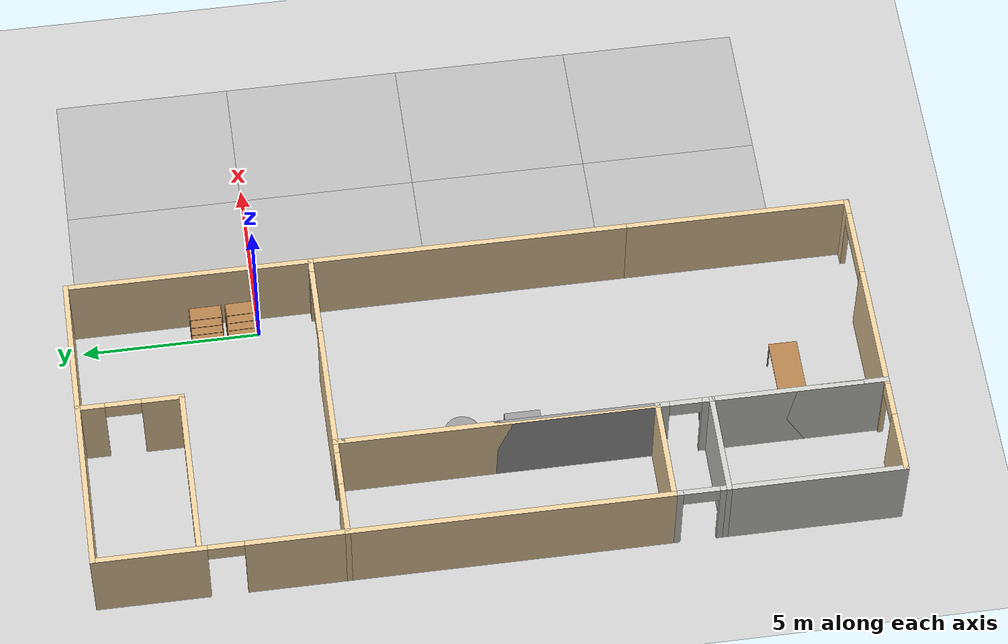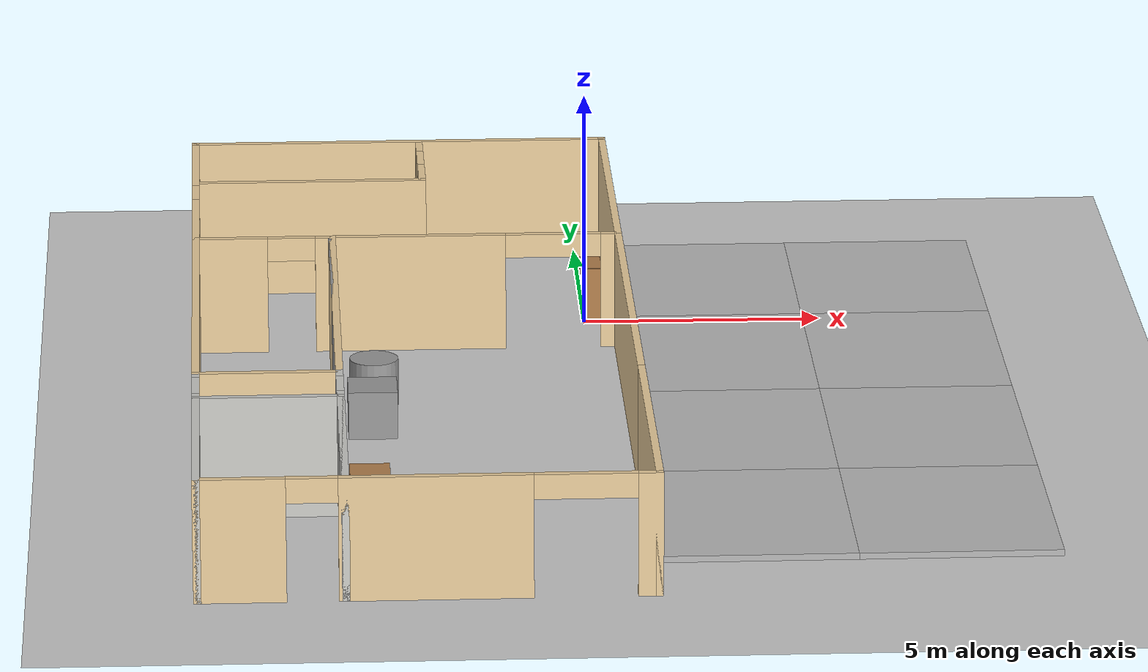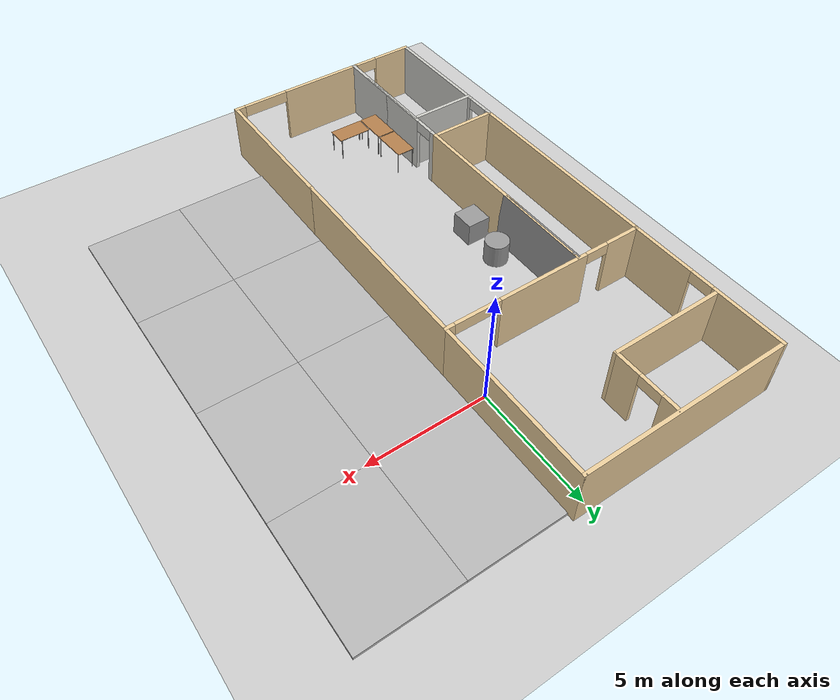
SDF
<sdf version="1.6">
 <world name="default">
  <model name="ground_plane">
   <static>1</static>
   <link name="link">
    <collision name="collision">
     <geometry><plane><normal>0 0 1</normal><size>100 100</size></plane></geometry>
     <surface>
      <contact><collide_bitmask>65535</collide_bitmask></contact>
      <friction><ode><mu>100</mu><mu2>50</mu2></ode></friction>
     </surface>
    </collision>
    <visual name="visual">
     <cast_shadows>0</cast_shadows>
     <geometry><plane><normal>0 0 1</normal><size>100 100</size></plane></geometry>
     <material>
      <script><uri>file://media/materials/scripts/gazebo.material</uri><name>Gazebo/Grey</name></script>
     </material>
    </visual>
   </link>
  </model>
  <model name="Building">
   <pose>-3.79491 -5.77885 0 0 -0 0</pose>
   <link name="Wall_50">
    <collision name="Wall_50_Collision">
     <geometry><box><size>9 0.15 2.5</size></box></geometry>
     <pose>0 0 1.25 0 -0 0</pose>
    </collision>
    <visual name="Wall_50_Visual">
     <pose>0 0 1.25 0 -0 0</pose>
     <geometry><box><size>9 0.15 2.5</size></box></geometry>
     <material>
      <script><uri>file://media/materials/scripts/gazebo.material</uri><name>Gazebo/Grey</name></script>
      <ambient>0.921569 0.807843 0.615686 1</ambient>
     </material>
     <meta><layer>0</layer></meta>
    </visual>
    <pose>0 11.025 0 0 -0 0</pose>
   </link>
   <link name="Wall_51">
    <collision name="Wall_51_Collision">
     <geometry><box><size>7 0.15 2.5</size></box></geometry>
     <pose>0 0 1.25 0 -0 0</pose>
    </collision>
    <visual name="Wall_51_Visual">
     <pose>0 0 1.25 0 -0 0</pose>
     <geometry><box><size>7 0.15 2.5</size></box></geometry>
     <material>
      <script><uri>file://media/materials/scripts/gazebo.material</uri><name>Gazebo/Grey</name></script>
      <ambient>0.921569 0.807843 0.615686 1</ambient>
     </material>
     <meta><layer>0</layer></meta>
    </visual>
    <pose>4.425 7.6 0 0 0 -1.5708</pose>
   </link>
   <link name="Wall_52">
    <pose>0 4.175 0 0 -0 3.14159</pose>
    <visual name="Wall_52_Visual_0">
     <pose>-4.28104 0 1.25 0 -0 0</pose>
     <geometry><box><size>0.437917 0.15 2.5</size></box></geometry>
     <material>
      <script><uri>file://media/materials/scripts/gazebo.material</uri><name>Gazebo/Grey</name></script>
      <ambient>0.921569 0.807843 0.615686 1</ambient>
     </material>
     <meta><layer>0</layer></meta>
    </visual>
    <collision name="Wall_52_Collision_0">
     <geometry><box><size>0.437917 0.15 2.5</size></box></geometry>
     <pose>-4.28104 0 1.25 0 -0 0</pose>
    </collision>
    <visual name="Wall_52_Visual_1">
     <pose>-0.067944 0 1.25 0 -0 0</pose>
     <geometry><box><size>3.98828 0.15 2.5</size></box></geometry>
     <material>
      <script><uri>file://media/materials/scripts/gazebo.material</uri><name>Gazebo/Grey</name></script>
      <ambient>0.921569 0.807843 0.615686 1</ambient>
     </material>
     <meta><layer>0</layer></meta>
    </visual>
    <collision name="Wall_52_Collision_1">
     <geometry><box><size>3.98828 0.15 2.5</size></box></geometry>
     <pose>-0.067944 0 1.25 0 -0 0</pose>
    </collision>
    <visual name="Wall_52_Visual_2">
     <pose>3.7131 0 1.25 0 -0 0</pose>
     <geometry><box><size>1.5738 0.15 2.5</size></box></geometry>
     <material>
      <script><uri>file://media/materials/scripts/gazebo.material</uri><name>Gazebo/Grey</name></script>
      <ambient>0.921569 0.807843 0.615686 1</ambient>
     </material>
     <meta><layer>0</layer></meta>
    </visual>
    <collision name="Wall_52_Collision_2">
     <geometry><box><size>1.5738 0.15 2.5</size></box></geometry>
     <pose>3.7131 0 1.25 0 -0 0</pose>
    </collision>
    <visual name="Wall_52_Visual_3">
     <pose>-3.06208 0 2.25 0 -0 0</pose>
     <geometry><box><size>2 0.15 0.5</size></box></geometry>
     <material>
      <script><uri>file://media/materials/scripts/gazebo.material</uri><name>Gazebo/Grey</name></script>
      <ambient>0.921569 0.807843 0.615686 1</ambient>
     </material>
     <meta><layer>0</layer></meta>
    </visual>
    <collision name="Wall_52_Collision_3">
     <geometry><box><size>2 0.15 0.5</size></box></geometry>
     <pose>-3.06208 0 2.25 0 -0 0</pose>
    </collision>
    <visual name="Wall_52_Visual_4">
     <pose>2.4262 0 2.25 0 -0 0</pose>
     <geometry><box><size>1 0.15 0.5</size></box></geometry>
     <material>
      <script><uri>file://media/materials/scripts/gazebo.material</uri><name>Gazebo/Grey</name></script>
      <ambient>0.921569 0.807843 0.615686 1</ambient>
     </material>
     <meta><layer>0</layer></meta>
    </visual>
    <collision name="Wall_52_Collision_4">
     <geometry><box><size>1 0.15 0.5</size></box></geometry>
     <pose>2.4262 0 2.25 0 -0 0</pose>
    </collision>
   </link>
   <link name="Wall_53">
    <pose>-4.425 7.6 0 0 -0 1.5708</pose>
    <visual name="Wall_53_Visual_0">
     <pose>-2.07395 0 1.25 0 -0 0</pose>
     <geometry><box><size>2.8521 0.15 2.5</size></box></geometry>
     <material>
      <script><uri>file://media/materials/scripts/gazebo.material</uri><name>Gazebo/Grey</name></script>
      <ambient>0.921569 0.807843 0.615686 1</ambient>
     </material>
     <meta><layer>0</layer></meta>
    </visual>
    <collision name="Wall_53_Collision_0">
     <geometry><box><size>2.8521 0.15 2.5</size></box></geometry>
     <pose>-2.07395 0 1.25 0 -0 0</pose>
    </collision>
    <visual name="Wall_53_Visual_1">
     <pose>1.92605 0 1.25 0 -0 0</pose>
     <geometry><box><size>3.1479 0.15 2.5</size></box></geometry>
     <material>
      <script><uri>file://media/materials/scripts/gazebo.material</uri><name>Gazebo/Grey</name></script>
      <ambient>0.921569 0.807843 0.615686 1</ambient>
     </material>
     <meta><layer>0</layer></meta>
    </visual>
    <collision name="Wall_53_Collision_1">
     <geometry><box><size>3.1479 0.15 2.5</size></box></geometry>
     <pose>1.92605 0 1.25 0 -0 0</pose>
    </collision>
    <visual name="Wall_53_Visual_2">
     <pose>-0.1479 0 2.25 0 -0 0</pose>
     <geometry><box><size>1 0.15 0.5</size></box></geometry>
     <material>
      <script><uri>file://media/materials/scripts/gazebo.material</uri><name>Gazebo/Grey</name></script>
      <ambient>0.921569 0.807843 0.615686 1</ambient>
     </material>
     <meta><layer>0</layer></meta>
    </visual>
    <collision name="Wall_53_Collision_2">
     <geometry><box><size>1 0.15 0.5</size></box></geometry>
     <pose>-0.1479 0 2.25 0 -0 0</pose>
    </collision>
   </link>
   <link name="Wall_55">
    <collision name="Wall_55_Collision">
     <geometry><box><size>9 0.15 2.5</size></box></geometry>
     <pose>0 0 1.25 0 -0 0</pose>
    </collision>
    <visual name="Wall_55_Visual">
     <pose>0 0 1.25 0 -0 0</pose>
     <geometry><box><size>9 0.15 2.5</size></box></geometry>
     <material>
      <script><uri>file://media/materials/scripts/gazebo.material</uri><name>Gazebo/Grey</name></script>
      <ambient>0.921569 0.807843 0.615686 1</ambient>
     </material>
     <meta><layer>0</layer></meta>
    </visual>
    <pose>-4.425 -0.25 0 0 0 -1.5708</pose>
   </link>
   <link name="Wall_56">
    <collision name="Wall_56_Collision">
     <geometry><box><size>3 0.15 2.5</size></box></geometry>
     <pose>0 0 1.25 0 -0 0</pose>
    </collision>
    <visual name="Wall_56_Visual">
     <pose>0 0 1.25 0 -0 0</pose>
     <geometry><box><size>3 0.15 2.5</size></box></geometry>
     <material>
      <script><uri>file://media/materials/scripts/gazebo.material</uri><name>Gazebo/Grey</name></script>
      <ambient>0.921569 0.807843 0.615686 1</ambient>
     </material>
     <meta><layer>0</layer></meta>
    </visual>
    <pose>-3 -4.675 0 0 -0 0</pose>
   </link>
   <link name="Wall_58">
    <collision name="Wall_58_Collision">
     <geometry><box><size>0.15 0.15 2.5</size></box></geometry>
     <pose>0 0 1.25 0 -0 0</pose>
    </collision>
    <visual name="Wall_58_Visual">
     <pose>0 0 1.25 0 -0 0</pose>
     <geometry><box><size>0.15 0.15 2.5</size></box></geometry>
     <material>
      <script><uri>file://media/materials/scripts/gazebo.material</uri><name>Gazebo/Grey</name></script>
      <ambient>1 1 1 1</ambient>
     </material>
     <meta><layer>0</layer></meta>
    </visual>
    <pose>-1.575 3.925 0 0 -0 0</pose>
   </link>
   <link name="Wall_66">
    <collision name="Wall_66_Collision">
     <geometry><box><size>9 0.15 2.5</size></box></geometry>
     <pose>0 0 1.25 0 -0 0</pose>
    </collision>
    <visual name="Wall_66_Visual">
     <pose>0 0 1.25 0 -0 0</pose>
     <geometry><box><size>9 0.15 2.5</size></box></geometry>
     <material>
      <script><uri>file://media/materials/scripts/gazebo.material</uri><name>Gazebo/Grey</name></script>
      <ambient>0.921569 0.807843 0.615686 1</ambient>
     </material>
     <meta><layer>0</layer></meta>
    </visual>
    <pose>-1.575 -0.25 0 0 -0 1.5708</pose>
   </link>
   <link name="Wall_68">
    <collision name="Wall_68_Collision">
     <geometry><box><size>9 0.15 2.5</size></box></geometry>
     <pose>0 0 1.25 0 -0 0</pose>
    </collision>
    <visual name="Wall_68_Visual">
     <pose>0 0 1.25 0 -0 0</pose>
     <geometry><box><size>9 0.15 2.5</size></box></geometry>
     <material>
      <script><uri>file://media/materials/scripts/gazebo.material</uri><name>Gazebo/Grey</name></script>
      <ambient>0.921569 0.807843 0.615686 1</ambient>
     </material>
     <meta><layer>0</layer></meta>
    </visual>
    <pose>4.425 -0.25 0 0 0 -1.5708</pose>
   </link>
   <link name="Wall_75">
    <collision name="Wall_75_Collision">
     <geometry><box><size>9 0.15 2.5</size></box></geometry>
     <pose>0 0 1.25 0 -0 0</pose>
    </collision>
    <visual name="Wall_75_Visual">
     <pose>0 0 1.25 0 -0 0</pose>
     <geometry><box><size>9 0.15 2.5</size></box></geometry>
     <material>
      <script><uri>file://media/materials/scripts/gazebo.material</uri><name>Gazebo/Grey</name></script>
      <ambient>1 1 1 1</ambient>
     </material>
     <meta><layer>0</layer></meta>
    </visual>
    <pose>-1.575 -0.25 0 0 0 -1.5708</pose>
   </link>
   <link name="Wall_78">
    <pose>-4.425 -7.85 0 0 0 -1.5708</pose>
    <visual name="Wall_78_Visual_0">
     <pose>-3.0867 0 1.25 0 -0 0</pose>
     <geometry><box><size>0.326599 0.15 2.5</size></box></geometry>
     <material>
      <script><uri>file://media/materials/scripts/gazebo.material</uri><name>Gazebo/CeilingTiled</name></script>
      <ambient>0.921569 0.807843 0.615686 1</ambient>
     </material>
     <meta><layer>0</layer></meta>
    </visual>
    <collision name="Wall_78_Collision_0">
     <geometry><box><size>0.326599 0.15 2.5</size></box></geometry>
     <pose>-3.0867 0 1.25 0 -0 0</pose>
    </collision>
    <visual name="Wall_78_Visual_1">
     <pose>0.6633 0 1.25 0 -0 0</pose>
     <geometry><box><size>5.1734 0.15 2.5</size></box></geometry>
     <material>
      <script><uri>file://media/materials/scripts/gazebo.material</uri><name>Gazebo/CeilingTiled</name></script>
      <ambient>0.921569 0.807843 0.615686 1</ambient>
     </material>
     <meta><layer>0</layer></meta>
    </visual>
    <collision name="Wall_78_Collision_1">
     <geometry><box><size>5.1734 0.15 2.5</size></box></geometry>
     <pose>0.6633 0 1.25 0 -0 0</pose>
    </collision>
    <visual name="Wall_78_Visual_2">
     <pose>-2.4234 0 2.25 0 -0 0</pose>
     <geometry><box><size>1 0.15 0.5</size></box></geometry>
     <material>
      <script><uri>file://media/materials/scripts/gazebo.material</uri><name>Gazebo/CeilingTiled</name></script>
      <ambient>0.921569 0.807843 0.615686 1</ambient>
     </material>
     <meta><layer>0</layer></meta>
    </visual>
    <collision name="Wall_78_Collision_2">
     <geometry><box><size>1 0.15 0.5</size></box></geometry>
     <pose>-2.4234 0 2.25 0 -0 0</pose>
    </collision>
   </link>
   <link name="Wall_80">
    <pose>0 -11.025 0 0 -0 0</pose>
    <visual name="Wall_80_Visual_0">
     <pose>-3.60666 0 1.25 0 -0 0</pose>
     <geometry><box><size>1.78667 0.15 2.5</size></box></geometry>
     <material>
      <script><uri>file://media/materials/scripts/gazebo.material</uri><name>Gazebo/Grey</name></script>
      <ambient>0.921569 0.807843 0.615686 1</ambient>
     </material>
     <meta><layer>0</layer></meta>
    </visual>
    <collision name="Wall_80_Collision_0">
     <geometry><box><size>1.78667 0.15 2.5</size></box></geometry>
     <pose>-3.60666 0 1.25 0 -0 0</pose>
    </collision>
    <visual name="Wall_80_Visual_1">
     <pose>0.15254 0 1.25 0 -0 0</pose>
     <geometry><box><size>3.73174 0.15 2.5</size></box></geometry>
     <material>
      <script><uri>file://media/materials/scripts/gazebo.material</uri><name>Gazebo/Grey</name></script>
      <ambient>0.921569 0.807843 0.615686 1</ambient>
     </material>
     <meta><layer>0</layer></meta>
    </visual>
    <collision name="Wall_80_Collision_1">
     <geometry><box><size>3.73174 0.15 2.5</size></box></geometry>
     <pose>0.15254 0 1.25 0 -0 0</pose>
    </collision>
    <visual name="Wall_80_Visual_2">
     <pose>4.2592 0 1.25 0 -0 0</pose>
     <geometry><box><size>0.481591 0.15 2.5</size></box></geometry>
     <material>
      <script><uri>file://media/materials/scripts/gazebo.material</uri><name>Gazebo/Grey</name></script>
      <ambient>0.921569 0.807843 0.615686 1</ambient>
     </material>
     <meta><layer>0</layer></meta>
    </visual>
    <collision name="Wall_80_Collision_2">
     <geometry><box><size>0.481591 0.15 2.5</size></box></geometry>
     <pose>4.2592 0 1.25 0 -0 0</pose>
    </collision>
    <visual name="Wall_80_Visual_3">
     <pose>-2.21333 0 2.25 0 -0 0</pose>
     <geometry><box><size>1 0.15 0.5</size></box></geometry>
     <material>
      <script><uri>file://media/materials/scripts/gazebo.material</uri><name>Gazebo/Grey</name></script>
      <ambient>0.921569 0.807843 0.615686 1</ambient>
     </material>
     <meta><layer>0</layer></meta>
    </visual>
    <collision name="Wall_80_Collision_3">
     <geometry><box><size>1 0.15 0.5</size></box></geometry>
     <pose>-2.21333 0 2.25 0 -0 0</pose>
    </collision>
    <visual name="Wall_80_Visual_4">
     <pose>3.01841 0 2.25 0 -0 0</pose>
     <geometry><box><size>2 0.15 0.5</size></box></geometry>
     <material>
      <script><uri>file://media/materials/scripts/gazebo.material</uri><name>Gazebo/Grey</name></script>
      <ambient>0.921569 0.807843 0.615686 1</ambient>
     </material>
     <meta><layer>0</layer></meta>
    </visual>
    <collision name="Wall_80_Collision_4">
     <geometry><box><size>2 0.15 0.5</size></box></geometry>
     <pose>3.01841 0 2.25 0 -0 0</pose>
    </collision>
   </link>
   <link name="Wall_82">
    <collision name="Wall_82_Collision">
     <geometry><box><size>6.5 0.15 2.5</size></box></geometry>
     <pose>0 0 1.25 0 -0 0</pose>
    </collision>
    <visual name="Wall_82_Visual">
     <pose>0 0 1.25 0 -0 0</pose>
     <geometry><box><size>6.5 0.15 2.5</size></box></geometry>
     <material>
      <script><uri>file://media/materials/scripts/gazebo.material</uri><name>Gazebo/Grey</name></script>
      <ambient>0.921569 0.807843 0.615686 1</ambient>
     </material>
     <meta><layer>0</layer></meta>
    </visual>
    <pose>4.425 -7.85 0 0 -0 1.5708</pose>
   </link>
   <link name="Wall_84">
    <pose>-1.575 -7.85 0 0 0 -1.5708</pose>
    <visual name="Wall_84_Visual_0">
     <pose>-3.04772 0 1.25 0 -0 0</pose>
     <geometry><box><size>0.404569 0.15 2.5</size></box></geometry>
     <material>
      <script><uri>file://media/materials/scripts/gazebo.material</uri><name>Gazebo/CeilingTiled</name></script>
      <ambient>0.921569 0.807843 0.615686 1</ambient>
     </material>
     <meta><layer>0</layer></meta>
    </visual>
    <collision name="Wall_84_Collision_0">
     <geometry><box><size>0.404569 0.15 2.5</size></box></geometry>
     <pose>-3.04772 0 1.25 0 -0 0</pose>
    </collision>
    <visual name="Wall_84_Visual_1">
     <pose>0.652285 0 1.25 0 -0 0</pose>
     <geometry><box><size>5.19543 0.15 2.5</size></box></geometry>
     <material>
      <script><uri>file://media/materials/scripts/gazebo.material</uri><name>Gazebo/CeilingTiled</name></script>
      <ambient>0.921569 0.807843 0.615686 1</ambient>
     </material>
     <meta><layer>0</layer></meta>
    </visual>
    <collision name="Wall_84_Collision_1">
     <geometry><box><size>5.19543 0.15 2.5</size></box></geometry>
     <pose>0.652285 0 1.25 0 -0 0</pose>
    </collision>
    <visual name="Wall_84_Visual_2">
     <pose>-2.39543 0 2.25 0 -0 0</pose>
     <geometry><box><size>0.9 0.15 0.5</size></box></geometry>
     <material>
      <script><uri>file://media/materials/scripts/gazebo.material</uri><name>Gazebo/CeilingTiled</name></script>
      <ambient>0.921569 0.807843 0.615686 1</ambient>
     </material>
     <meta><layer>0</layer></meta>
    </visual>
    <collision name="Wall_84_Collision_2">
     <geometry><box><size>0.9 0.15 0.5</size></box></geometry>
     <pose>-2.39543 0 2.25 0 -0 0</pose>
    </collision>
   </link>
   <link name="Wall_86">
    <collision name="Wall_86_Collision">
     <geometry><box><size>5 0.15 2.5</size></box></geometry>
     <pose>0 0 1.25 0 -0 0</pose>
    </collision>
    <visual name="Wall_86_Visual">
     <pose>0 0 1.25 0 -0 0</pose>
     <geometry><box><size>5 0.15 2.5</size></box></geometry>
     <material>
      <script><uri>file://media/materials/scripts/gazebo.material</uri><name>Gazebo/CeilingTiled</name></script>
      <ambient>0.921569 0.807843 0.615686 1</ambient>
     </material>
     <meta><layer>0</layer></meta>
    </visual>
    <pose>-1.575 -8.6 0 0 -0 1.5708</pose>
   </link>
   <link name="Wall_89">
    <collision name="Wall_89_Collision">
     <geometry><box><size>3 0.15 2.5</size></box></geometry>
     <pose>0 0 1.25 0 -0 0</pose>
    </collision>
    <visual name="Wall_89_Visual">
     <pose>0 0 1.25 0 -0 0</pose>
     <geometry><box><size>3 0.15 2.5</size></box></geometry>
     <material>
      <script><uri>file://media/materials/scripts/gazebo.material</uri><name>Gazebo/CeilingTiled</name></script>
      <ambient>0.921569 0.807843 0.615686 1</ambient>
     </material>
     <meta><layer>0</layer></meta>
    </visual>
    <pose>-3 -6.175 0 0 -0 3.14159</pose>
   </link>
   <link name="Wall_91">
    <pose>0.429416 9.58905 0 0 0 -1.5708</pose>
    <visual name="Wall_91_Visual_0">
     <pose>-1.09544 0 1.25 0 -0 0</pose>
     <geometry><box><size>0.809125 0.15 2.5</size></box></geometry>
     <material>
      <script><uri>file://media/materials/scripts/gazebo.material</uri><name>Gazebo/Grey</name></script>
      <ambient>0.921569 0.807843 0.615686 1</ambient>
     </material>
     <meta><layer>0</layer></meta>
    </visual>
    <collision name="Wall_91_Collision_0">
     <geometry><box><size>0.809125 0.15 2.5</size></box></geometry>
     <pose>-1.09544 0 1.25 0 -0 0</pose>
    </collision>
    <visual name="Wall_91_Visual_1">
     <pose>0.904562 0 1.25 0 -0 0</pose>
     <geometry><box><size>1.19087 0.15 2.5</size></box></geometry>
     <material>
      <script><uri>file://media/materials/scripts/gazebo.material</uri><name>Gazebo/Grey</name></script>
      <ambient>0.921569 0.807843 0.615686 1</ambient>
     </material>
     <meta><layer>0</layer></meta>
    </visual>
    <collision name="Wall_91_Collision_1">
     <geometry><box><size>1.19087 0.15 2.5</size></box></geometry>
     <pose>0.904562 0 1.25 0 -0 0</pose>
    </collision>
    <visual name="Wall_91_Visual_2">
     <pose>-0.190875 0 2.25 0 -0 0</pose>
     <geometry><box><size>1 0.15 0.5</size></box></geometry>
     <material>
      <script><uri>file://media/materials/scripts/gazebo.material</uri><name>Gazebo/Grey</name></script>
      <ambient>0.921569 0.807843 0.615686 1</ambient>
     </material>
     <meta><layer>0</layer></meta>
    </visual>
    <collision name="Wall_91_Collision_2">
     <geometry><box><size>1 0.15 0.5</size></box></geometry>
     <pose>-0.190875 0 2.25 0 -0 0</pose>
    </collision>
   </link>
   <link name="Wall_92">
    <collision name="Wall_92_Collision">
     <geometry><box><size>5 0.15 2.5</size></box></geometry>
     <pose>0 0 1.25 0 -0 0</pose>
    </collision>
    <visual name="Wall_92_Visual">
     <pose>0 0 1.25 0 -0 0</pose>
     <geometry><box><size>5 0.15 2.5</size></box></geometry>
     <material>
      <script><uri>file://media/materials/scripts/gazebo.material</uri><name>Gazebo/Grey</name></script>
      <ambient>0.921569 0.807843 0.615686 1</ambient>
     </material>
     <meta><layer>0</layer></meta>
    </visual>
    <pose>-1.99558 8.16405 0 0 -0 3.14159</pose>
   </link>
   <static>1</static>
  </model>
  <model name="table_8">
   <static>1</static>
   <link name="link">
    <collision name="surface">
     <pose>0 0 1 0 -0 0</pose>
     <geometry><box><size>1.5 0.8 0.03</size></box></geometry>
     <surface><friction><ode><mu>0.6</mu><mu2>0.6</mu2></ode></friction></surface>
    </collision>
    <visual name="visual1">
     <pose>0 0 1 0 -0 0</pose>
     <geometry><box><size>1.5 0.8 0.03</size></box></geometry>
     <material>
      <script><uri>file://media/materials/scripts/gazebo.material</uri><name>Gazebo/Wood</name></script>
     </material>
    </visual>
    <collision name="front_left_leg">
     <pose>0.68 0.38 0.5 0 -0 0</pose>
     <geometry><cylinder><radius>0.02</radius><length>1</length></cylinder></geometry>
    </collision>
    <visual name="front_left_leg">
     <pose>0.68 0.38 0.5 0 -0 0</pose>
     <geometry><cylinder><radius>0.02</radius><length>1</length></cylinder></geometry>
     <material>
      <script><uri>file://media/materials/scripts/gazebo.material</uri><name>Gazebo/Grey</name></script>
     </material>
    </visual>
    <collision name="front_right_leg">
     <pose>0.68 -0.38 0.5 0 -0 0</pose>
     <geometry><cylinder><radius>0.02</radius><length>1</length></cylinder></geometry>
    </collision>
    <visual name="front_right_leg">
     <pose>0.68 -0.38 0.5 0 -0 0</pose>
     <geometry><cylinder><radius>0.02</radius><length>1</length></cylinder></geometry>
     <material>
      <script><uri>file://media/materials/scripts/gazebo.material</uri><name>Gazebo/Grey</name></script>
     </material>
    </visual>
    <collision name="back_right_leg">
     <pose>-0.68 -0.38 0.5 0 -0 0</pose>
     <geometry><cylinder><radius>0.02</radius><length>1</length></cylinder></geometry>
    </collision>
    <visual name="back_right_leg">
     <pose>-0.68 -0.38 0.5 0 -0 0</pose>
     <geometry><cylinder><radius>0.02</radius><length>1</length></cylinder></geometry>
     <material>
      <script><uri>file://media/materials/scripts/gazebo.material</uri><name>Gazebo/Grey</name></script>
     </material>
    </visual>
    <collision name="back_left_leg">
     <pose>-0.68 0.38 0.5 0 -0 0</pose>
     <geometry><cylinder><radius>0.02</radius><length>1</length></cylinder></geometry>
    </collision>
    <visual name="back_left_leg">
     <pose>-0.68 0.38 0.5 0 -0 0</pose>
     <geometry><cylinder><radius>0.02</radius><length>1</length></cylinder></geometry>
     <material>
      <script><uri>file://media/materials/scripts/gazebo.material</uri><name>Gazebo/Grey</name></script>
     </material>
    </visual>
   </link>
   <pose>-3.62062 -14.4481 0 0 -0 0</pose>
  </model>
  <model name="table_9">
   <static>1</static>
   <link name="link">
    <collision name="surface">
     <pose>0 0 1 0 -0 0</pose>
     <geometry><box><size>1.5 0.8 0.03</size></box></geometry>
     <surface><friction><ode><mu>0.6</mu><mu2>0.6</mu2></ode></friction></surface>
    </collision>
    <visual name="visual1">
     <pose>0 0 1 0 -0 0</pose>
     <geometry><box><size>1.5 0.8 0.03</size></box></geometry>
     <material>
      <script><uri>file://media/materials/scripts/gazebo.material</uri><name>Gazebo/Wood</name></script>
     </material>
    </visual>
    <collision name="front_left_leg">
     <pose>0.68 0.38 0.5 0 -0 0</pose>
     <geometry><cylinder><radius>0.02</radius><length>1</length></cylinder></geometry>
    </collision>
    <visual name="front_left_leg">
     <pose>0.68 0.38 0.5 0 -0 0</pose>
     <geometry><cylinder><radius>0.02</radius><length>1</length></cylinder></geometry>
     <material>
      <script><uri>file://media/materials/scripts/gazebo.material</uri><name>Gazebo/Grey</name></script>
     </material>
    </visual>
    <collision name="front_right_leg">
     <pose>0.68 -0.38 0.5 0 -0 0</pose>
     <geometry><cylinder><radius>0.02</radius><length>1</length></cylinder></geometry>
    </collision>
    <visual name="front_right_leg">
     <pose>0.68 -0.38 0.5 0 -0 0</pose>
     <geometry><cylinder><radius>0.02</radius><length>1</length></cylinder></geometry>
     <material>
      <script><uri>file://media/materials/scripts/gazebo.material</uri><name>Gazebo/Grey</name></script>
     </material>
    </visual>
    <collision name="back_right_leg">
     <pose>-0.68 -0.38 0.5 0 -0 0</pose>
     <geometry><cylinder><radius>0.02</radius><length>1</length></cylinder></geometry>
    </collision>
    <visual name="back_right_leg">
     <pose>-0.68 -0.38 0.5 0 -0 0</pose>
     <geometry><cylinder><radius>0.02</radius><length>1</length></cylinder></geometry>
     <material>
      <script><uri>file://media/materials/scripts/gazebo.material</uri><name>Gazebo/Grey</name></script>
     </material>
    </visual>
    <collision name="back_left_leg">
     <pose>-0.68 0.38 0.5 0 -0 0</pose>
     <geometry><cylinder><radius>0.02</radius><length>1</length></cylinder></geometry>
    </collision>
    <visual name="back_left_leg">
     <pose>-0.68 0.38 0.5 0 -0 0</pose>
     <geometry><cylinder><radius>0.02</radius><length>1</length></cylinder></geometry>
     <material>
      <script><uri>file://media/materials/scripts/gazebo.material</uri><name>Gazebo/Grey</name></script>
     </material>
    </visual>
   </link>
   <pose>-4.81634 -14.1127 0 0 -0 1.56887</pose>
  </model>
  <model name="table_10">
   <static>1</static>
   <link name="link">
    <collision name="surface">
     <pose>0 0 1 0 -0 0</pose>
     <geometry><box><size>1.5 0.8 0.03</size></box></geometry>
     <surface><friction><ode><mu>0.6</mu><mu2>0.6</mu2></ode></friction></surface>
    </collision>
    <visual name="visual1">
     <pose>0 0 1 0 -0 0</pose>
     <geometry><box><size>1.5 0.8 0.03</size></box></geometry>
     <material>
      <script><uri>file://media/materials/scripts/gazebo.material</uri><name>Gazebo/Wood</name></script>
     </material>
    </visual>
    <collision name="front_left_leg">
     <pose>0.68 0.38 0.5 0 -0 0</pose>
     <geometry><cylinder><radius>0.02</radius><length>1</length></cylinder></geometry>
    </collision>
    <visual name="front_left_leg">
     <pose>0.68 0.38 0.5 0 -0 0</pose>
     <geometry><cylinder><radius>0.02</radius><length>1</length></cylinder></geometry>
     <material>
      <script><uri>file://media/materials/scripts/gazebo.material</uri><name>Gazebo/Grey</name></script>
     </material>
    </visual>
    <collision name="front_right_leg">
     <pose>0.68 -0.38 0.5 0 -0 0</pose>
     <geometry><cylinder><radius>0.02</radius><length>1</length></cylinder></geometry>
    </collision>
    <visual name="front_right_leg">
     <pose>0.68 -0.38 0.5 0 -0 0</pose>
     <geometry><cylinder><radius>0.02</radius><length>1</length></cylinder></geometry>
     <material>
      <script><uri>file://media/materials/scripts/gazebo.material</uri><name>Gazebo/Grey</name></script>
     </material>
    </visual>
    <collision name="back_right_leg">
     <pose>-0.68 -0.38 0.5 0 -0 0</pose>
     <geometry><cylinder><radius>0.02</radius><length>1</length></cylinder></geometry>
    </collision>
    <visual name="back_right_leg">
     <pose>-0.68 -0.38 0.5 0 -0 0</pose>
     <geometry><cylinder><radius>0.02</radius><length>1</length></cylinder></geometry>
     <material>
      <script><uri>file://media/materials/scripts/gazebo.material</uri><name>Gazebo/Grey</name></script>
     </material>
    </visual>
    <collision name="back_left_leg">
     <pose>-0.68 0.38 0.5 0 -0 0</pose>
     <geometry><cylinder><radius>0.02</radius><length>1</length></cylinder></geometry>
    </collision>
    <visual name="back_left_leg">
     <pose>-0.68 0.38 0.5 0 -0 0</pose>
     <geometry><cylinder><radius>0.02</radius><length>1</length></cylinder></geometry>
     <material>
      <script><uri>file://media/materials/scripts/gazebo.material</uri><name>Gazebo/Grey</name></script>
     </material>
    </visual>
   </link>
   <pose>-4.81249 -12.5568 0 0 -0 1.57462</pose>
  </model>
  <model name="mud_box">
   <static>1</static>
   <link name="link">
    <collision name="collision"><geometry><box><size>8 10 0.2</size></box></geometry></collision>
    <visual name="visual_1">
     <pose>-2 2.5 0 0 -0 0</pose>
     <cast_shadows>0</cast_shadows>
     <geometry><box><size>4 5 0.2</size></box></geometry>
     <material>
      <script>
       <uri>model://mud_box/materials/scripts</uri>
       <uri>model://mud_box/materials/textures</uri>
       <name>vrc/mud</name>
      </script>
     </material>
    </visual>
    <visual name="visual_2">
     <pose>2 2.5 0 0 -0 0</pose>
     <cast_shadows>0</cast_shadows>
     <geometry><box><size>4 5 0.2</size></box></geometry>
     <material>
      <script>
       <uri>model://mud_box/materials/scripts</uri>
       <uri>model://mud_box/materials/textures</uri>
       <name>vrc/mud</name>
      </script>
     </material>
    </visual>
    <visual name="visual_3">
     <pose>2 -2.5 0 0 -0 0</pose>
     <cast_shadows>0</cast_shadows>
     <geometry><box><size>4 5 0.2</size></box></geometry>
     <material>
      <script>
       <uri>model://mud_box/materials/scripts</uri>
       <uri>model://mud_box/materials/textures</uri>
       <name>vrc/mud</name>
      </script>
     </material>
    </visual>
    <visual name="visual_4">
     <pose>-2 -2.5 0 0 -0 0</pose>
     <cast_shadows>0</cast_shadows>
     <geometry><box><size>4 5 0.2</size></box></geometry>
     <material>
      <script>
       <uri>model://mud_box/materials/scripts</uri>
       <uri>model://mud_box/materials/textures</uri>
       <name>vrc/mud</name>
      </script>
     </material>
    </visual>
   </link>
   <pose>4.62488 0.051048 0 0 -0 0</pose>
  </model>
  <model name="mud_box_0">
   <static>1</static>
   <link name="link">
    <collision name="collision"><geometry><box><size>8 10 0.2</size></box></geometry></collision>
    <visual name="visual_1">
     <pose>-2 2.5 0 0 -0 0</pose>
     <cast_shadows>0</cast_shadows>
     <geometry><box><size>4 5 0.2</size></box></geometry>
     <material>
      <script>
       <uri>model://mud_box/materials/scripts</uri>
       <uri>model://mud_box/materials/textures</uri>
       <name>vrc/mud</name>
      </script>
     </material>
    </visual>
    <visual name="visual_2">
     <pose>2 2.5 0 0 -0 0</pose>
     <cast_shadows>0</cast_shadows>
     <geometry><box><size>4 5 0.2</size></box></geometry>
     <material>
      <script>
       <uri>model://mud_box/materials/scripts</uri>
       <uri>model://mud_box/materials/textures</uri>
       <name>vrc/mud</name>
      </script>
     </material>
    </visual>
    <visual name="visual_3">
     <pose>2 -2.5 0 0 -0 0</pose>
     <cast_shadows>0</cast_shadows>
     <geometry><box><size>4 5 0.2</size></box></geometry>
     <material>
      <script>
       <uri>model://mud_box/materials/scripts</uri>
       <uri>model://mud_box/materials/textures</uri>
       <name>vrc/mud</name>
      </script>
     </material>
    </visual>
    <visual name="visual_4">
     <pose>-2 -2.5 0 0 -0 0</pose>
     <cast_shadows>0</cast_shadows>
     <geometry><box><size>4 5 0.2</size></box></geometry>
     <material>
      <script>
       <uri>model://mud_box/materials/scripts</uri>
       <uri>model://mud_box/materials/textures</uri>
       <name>vrc/mud</name>
      </script>
     </material>
    </visual>
   </link>
   <pose>4.62473 -9.94847 0 0 -0 0</pose>
  </model>
  <model name="unit_cylinder_0">
   <pose>-4.5836 -5.18651 0.5 0 -0 0</pose>
   <link name="link">
    <inertial>
     <mass>1</mass>
     <inertia><ixx>0.145833</ixx><ixy>0</ixy><ixz>0</ixz><iyy>0.145833</iyy><iyz>0</iyz><izz>0.125</izz></inertia>
    </inertial>
    <collision name="collision">
     <geometry><cylinder><radius>0.5</radius><length>1</length></cylinder></geometry>
    </collision>
    <visual name="visual">
     <geometry><cylinder><radius>0.5</radius><length>1</length></cylinder></geometry>
     <material>
      <script><name>Gazebo/Grey</name><uri>file://media/materials/scripts/gazebo.material</uri></script>
     </material>
    </visual>
   </link>
  </model>
  <model name="unit_box_0">
   <pose>-4.64996 -6.90721 0.499995 0 1e-05 0</pose>
   <link name="link">
    <inertial>
     <mass>1</mass>
     <inertia>
      <ixx>0.166667</ixx>
      <ixy>0</ixy>
      <ixz>0</ixz>
      <iyy>0.166667</iyy>
      <iyz>0</iyz>
      <izz>0.166667</izz>
     </inertia>
    </inertial>
    <collision name="collision"><geometry><box><size>1 1 1</size></box></geometry></collision>
    <visual name="visual">
     <geometry><box><size>1 1 1</size></box></geometry>
     <material>
      <script><name>Gazebo/Grey</name><uri>file://media/materials/scripts/gazebo.material</uri></script>
     </material>
    </visual>
   </link>
  </model>
  <model name="bookshelf_2">
   <static>1</static>
   <link name="link">
    <inertial><mass>1</mass></inertial>
    <collision name="back">
     <pose>0 0.005 0.6 0 -0 0</pose>
     <geometry><box><size>0.9 0.01 1.2</size></box></geometry>
    </collision>
    <visual name="visual1">
     <pose>0 0.005 0.6 0 -0 0</pose>
     <geometry><box><size>0.9 0.01 1.2</size></box></geometry>
     <material>
      <script><uri>file://media/materials/scripts/gazebo.material</uri><name>Gazebo/Wood</name></script>
     </material>
    </visual>
    <collision name="left_side">
     <pose>0.45 -0.195 0.6 0 -0 0</pose>
     <geometry><box><size>0.02 0.4 1.2</size></box></geometry>
    </collision>
    <visual name="visual2">
     <pose>0.45 -0.195 0.6 0 -0 0</pose>
     <geometry><box><size>0.02 0.4 1.2</size></box></geometry>
     <material>
      <script><uri>file://media/materials/scripts/gazebo.material</uri><name>Gazebo/Wood</name></script>
     </material>
    </visual>
    <collision name="right_side">
     <pose>-0.45 -0.195 0.6 0 -0 0</pose>
     <geometry><box><size>0.02 0.4 1.2</size></box></geometry>
    </collision>
    <visual name="visual3">
     <pose>-0.45 -0.195 0.6 0 -0 0</pose>
     <geometry><box><size>0.02 0.4 1.2</size></box></geometry>
     <material>
      <script><uri>file://media/materials/scripts/gazebo.material</uri><name>Gazebo/Wood</name></script>
     </material>
    </visual>
    <collision name="bottom">
     <pose>0 -0.195 0.03 0 -0 0</pose>
     <geometry><box><size>0.88 0.4 0.06</size></box></geometry>
    </collision>
    <visual name="visual4">
     <pose>0 -0.195 0.03 0 -0 0</pose>
     <geometry><box><size>0.88 0.4 0.06</size></box></geometry>
     <material>
      <script><uri>file://media/materials/scripts/gazebo.material</uri><name>Gazebo/Wood</name></script>
     </material>
    </visual>
    <collision name="top">
     <pose>0 -0.195 1.19 0 -0 0</pose>
     <geometry><box><size>0.88 0.4 0.02</size></box></geometry>
    </collision>
    <visual name="visual5">
     <pose>0 -0.195 1.19 0 -0 0</pose>
     <geometry><box><size>0.88 0.4 0.02</size></box></geometry>
     <material>
      <script><uri>file://media/materials/scripts/gazebo.material</uri><name>Gazebo/Wood</name></script>
     </material>
    </visual>
    <collision name="low_shelf">
     <pose>0 -0.195 0.43 0 -0 0</pose>
     <geometry><box><size>0.88 0.4 0.02</size></box></geometry>
    </collision>
    <visual name="visual6">
     <pose>0 -0.195 0.43 0 -0 0</pose>
     <geometry><box><size>0.88 0.4 0.02</size></box></geometry>
     <material>
      <script><uri>file://media/materials/scripts/gazebo.material</uri><name>Gazebo/Wood</name></script>
     </material>
    </visual>
    <collision name="high_shelf">
     <pose>0 -0.195 0.8 0 -0 0</pose>
     <geometry><box><size>0.88 0.4 0.02</size></box></geometry>
    </collision>
    <visual name="visual7">
     <pose>0 -0.195 0.8 0 -0 0</pose>
     <geometry><box><size>0.88 0.4 0.02</size></box></geometry>
     <material>
      <script><uri>file://media/materials/scripts/gazebo.material</uri><name>Gazebo/Wood</name></script>
     </material>
    </visual>
   </link>
   <pose>0.347859 1.45472 0 0 0 -1.5623</pose>
  </model>
  <model name="bookshelf_3">
   <static>1</static>
   <link name="link">
    <inertial><mass>1</mass></inertial>
    <collision name="back">
     <pose>0 0.005 0.6 0 -0 0</pose>
     <geometry><box><size>0.9 0.01 1.2</size></box></geometry>
    </collision>
    <visual name="visual1">
     <pose>0 0.005 0.6 0 -0 0</pose>
     <geometry><box><size>0.9 0.01 1.2</size></box></geometry>
     <material>
      <script><uri>file://media/materials/scripts/gazebo.material</uri><name>Gazebo/Wood</name></script>
     </material>
    </visual>
    <collision name="left_side">
     <pose>0.45 -0.195 0.6 0 -0 0</pose>
     <geometry><box><size>0.02 0.4 1.2</size></box></geometry>
    </collision>
    <visual name="visual2">
     <pose>0.45 -0.195 0.6 0 -0 0</pose>
     <geometry><box><size>0.02 0.4 1.2</size></box></geometry>
     <material>
      <script><uri>file://media/materials/scripts/gazebo.material</uri><name>Gazebo/Wood</name></script>
     </material>
    </visual>
    <collision name="right_side">
     <pose>-0.45 -0.195 0.6 0 -0 0</pose>
     <geometry><box><size>0.02 0.4 1.2</size></box></geometry>
    </collision>
    <visual name="visual3">
     <pose>-0.45 -0.195 0.6 0 -0 0</pose>
     <geometry><box><size>0.02 0.4 1.2</size></box></geometry>
     <material>
      <script><uri>file://media/materials/scripts/gazebo.material</uri><name>Gazebo/Wood</name></script>
     </material>
    </visual>
    <collision name="bottom">
     <pose>0 -0.195 0.03 0 -0 0</pose>
     <geometry><box><size>0.88 0.4 0.06</size></box></geometry>
    </collision>
    <visual name="visual4">
     <pose>0 -0.195 0.03 0 -0 0</pose>
     <geometry><box><size>0.88 0.4 0.06</size></box></geometry>
     <material>
      <script><uri>file://media/materials/scripts/gazebo.material</uri><name>Gazebo/Wood</name></script>
     </material>
    </visual>
    <collision name="top">
     <pose>0 -0.195 1.19 0 -0 0</pose>
     <geometry><box><size>0.88 0.4 0.02</size></box></geometry>
    </collision>
    <visual name="visual5">
     <pose>0 -0.195 1.19 0 -0 0</pose>
     <geometry><box><size>0.88 0.4 0.02</size></box></geometry>
     <material>
      <script><uri>file://media/materials/scripts/gazebo.material</uri><name>Gazebo/Wood</name></script>
     </material>
    </visual>
    <collision name="low_shelf">
     <pose>0 -0.195 0.43 0 -0 0</pose>
     <geometry><box><size>0.88 0.4 0.02</size></box></geometry>
    </collision>
    <visual name="visual6">
     <pose>0 -0.195 0.43 0 -0 0</pose>
     <geometry><box><size>0.88 0.4 0.02</size></box></geometry>
     <material>
      <script><uri>file://media/materials/scripts/gazebo.material</uri><name>Gazebo/Wood</name></script>
     </material>
    </visual>
    <collision name="high_shelf">
     <pose>0 -0.195 0.8 0 -0 0</pose>
     <geometry><box><size>0.88 0.4 0.02</size></box></geometry>
    </collision>
    <visual name="visual7">
     <pose>0 -0.195 0.8 0 -0 0</pose>
     <geometry><box><size>0.88 0.4 0.02</size></box></geometry>
     <material>
      <script><uri>file://media/materials/scripts/gazebo.material</uri><name>Gazebo/Wood</name></script>
     </material>
    </visual>
   </link>
   <pose>0.371265 0.440468 0 0 0 -1.54726</pose>
  </model>
 </world>
</sdf>
